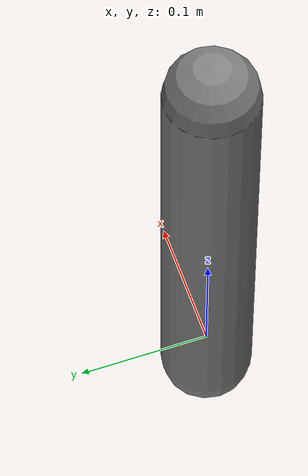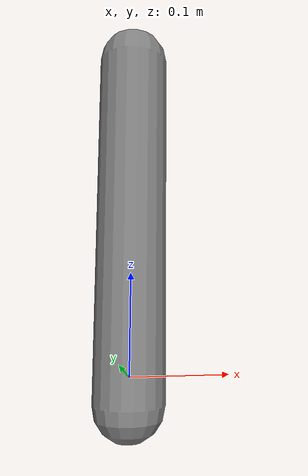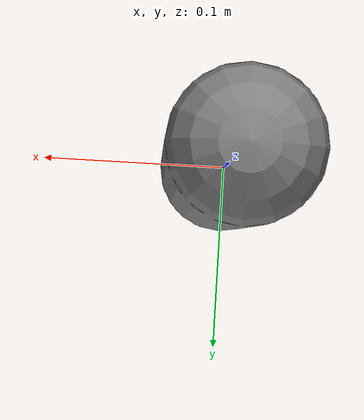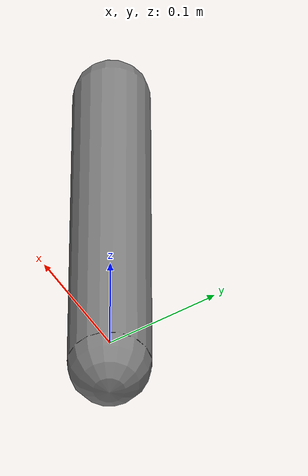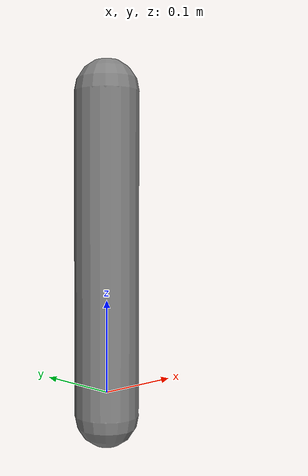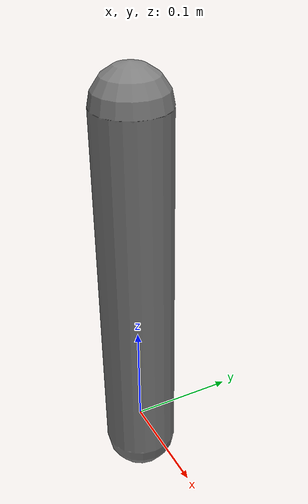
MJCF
<mujoco model="bat_one">
    <worldbody>
        <body name = "bat_one_gripper" pos="0 0 0.15" quat="0 0 0 1" >
        <site name="ft_frame" pos="0 0 0" size="0.01 0.01 0.01" rgba="1 0 0 1" type="sphere" group="1" />
        <!-- This site was added for visualization. -->
        <site name="grip_site" pos="0 0 -0.1775" size="0.01 0.01 0.01" rgba="1 0 0 0.5" type="sphere" group="1"/>
        <!-- For visualization? But has been made small so is normally hidden internally -->
        <!-- Something in the robot model requires this site to be defined if you attach this gripper -->
        <site name="grip_site_cylinder" pos="0 0 0.1399" size="0.005 0.01" rgba="0 1 0 0.3" type="capsule" group="1"/>
        <geom name="bat" size="0.035 0.175" type="capsule" />
        <geom name="bat_one" size="0.035 0.175" type="capsule" contype="0" conaffinity="0" group="1" />
        </body>
    </worldbody>
    <sensor>
        <force name="force_ee" site="ft_frame"/>
        <torque name="torque_ee" site="ft_frame"/>
    </sensor>
</mujoco>
